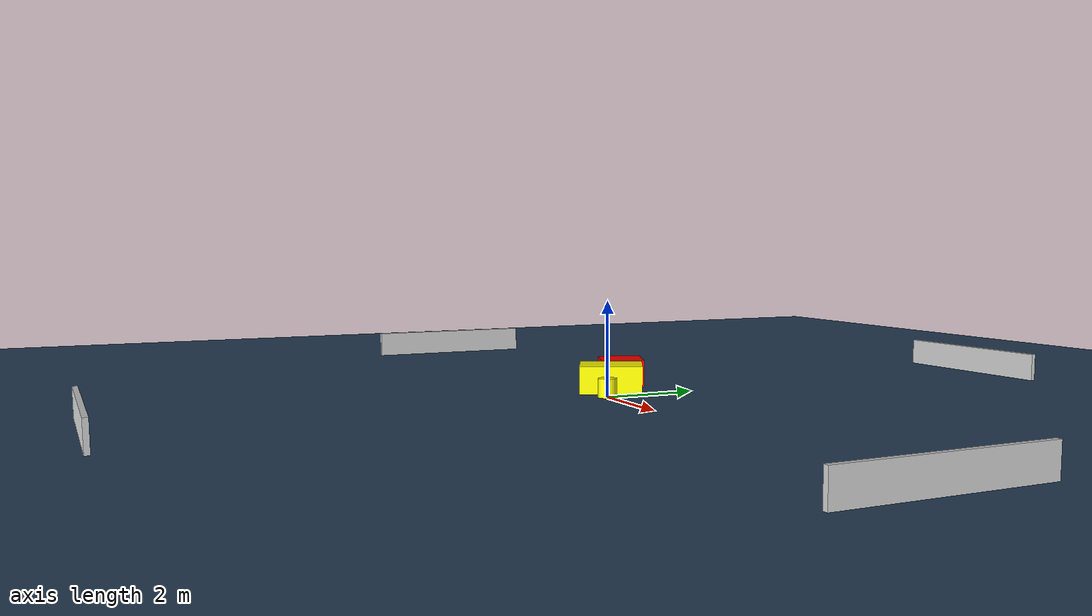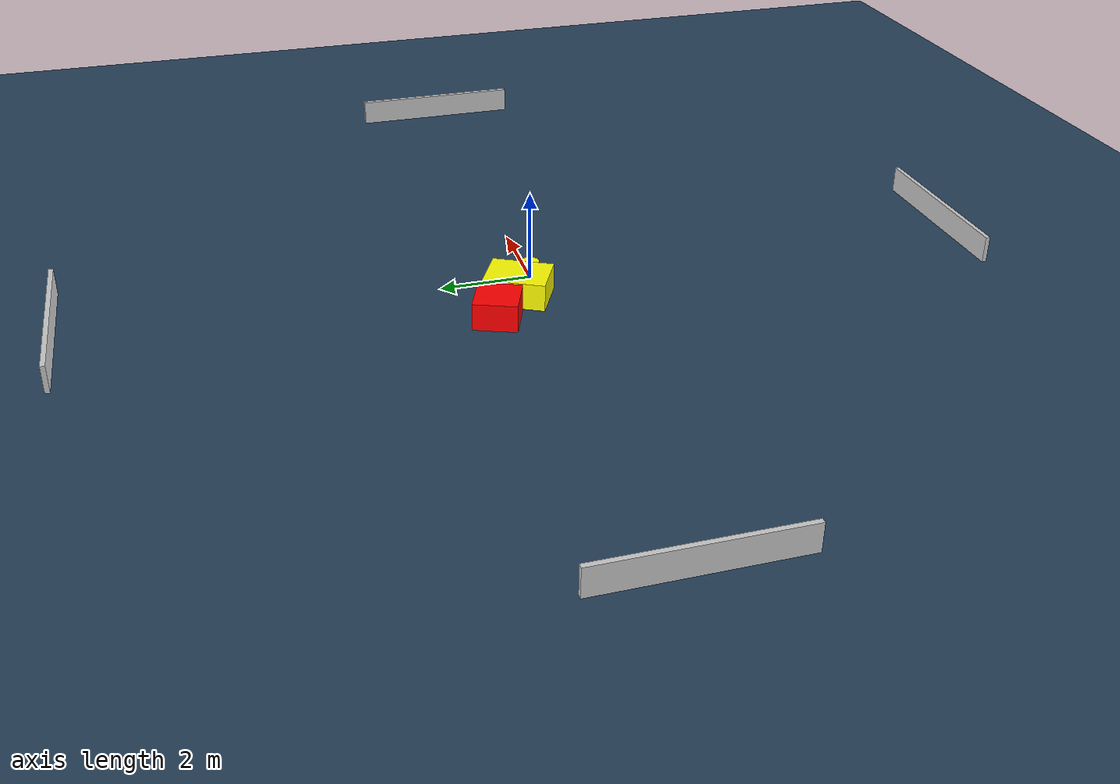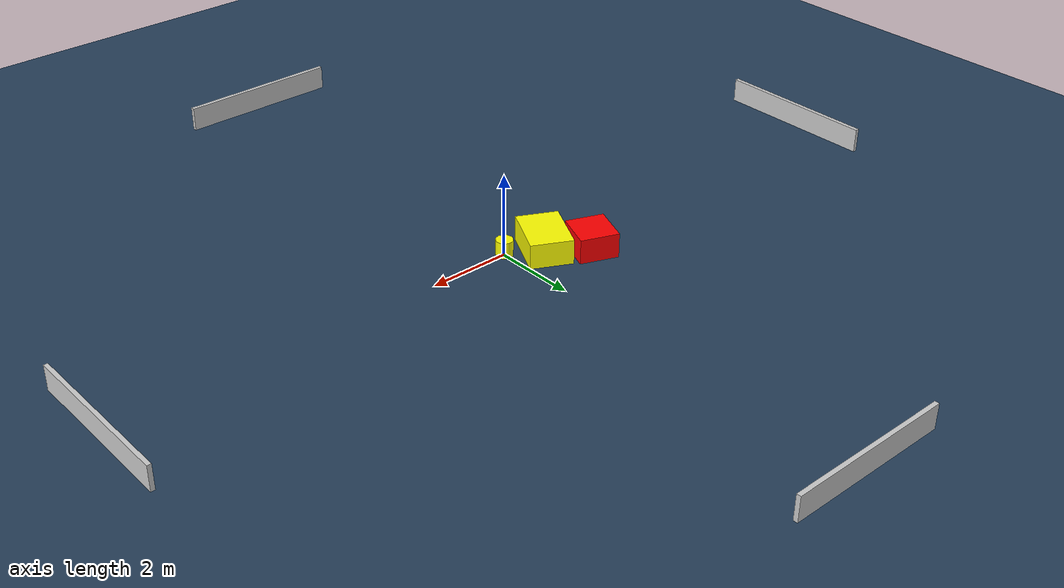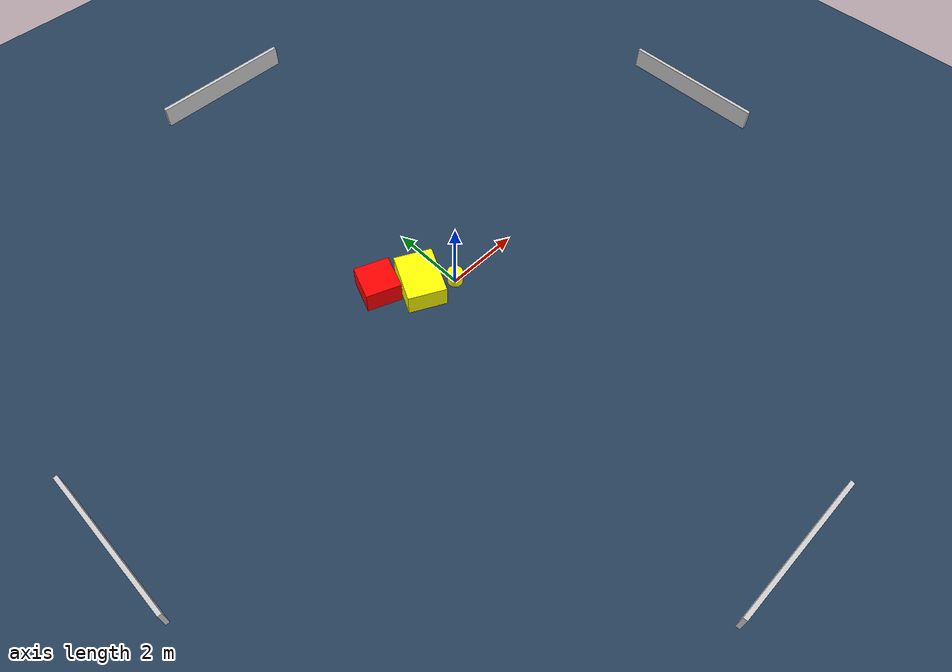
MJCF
<?xml version="1.0" ?>
<mujoco model="generated_environment">
  <option timestep="0.01" integrator="RK4" cone="elliptic"/>
  <default>
    <geom density="1"/>
  </default>
  <asset>
    <texture builtin="gradient" height="3072" name="skybox" rgb1="0.3 0.5 0.7" rgb2="0 0 0" type="skybox" width="512"/>
    <texture builtin="checker" height="300" name="groundplane" rgb1="0.2 0.3 0.4" rgb2="0.1 0.2 0.3" type="2d" width="300"/>
    <material name="groundplane" reflectance="0.2" texrepeat="5 5" texture="groundplane"/>
  </asset>
  <worldbody>
    <light dir="0 0 -1" directional="true" pos="0 0 1.5"/>
    <geom condim="3" friction="0.5 0.005 0.001" material="groundplane" name="floor" pos="0 0 0" size="0 0 0.05" type="plane"/>
    <body name="walls">
      <geom name="wall_1" condim="4" pos="-10.0 0.0 0.3" rgba="0.800000011920929 0.800000011920929 0.800000011920929 1.0" size="0.05 2.0 0.3" type="box"/>
      <geom name="wall_2" condim="4" pos="10.0 0.0 0.3" rgba="0.800000011920929 0.800000011920929 0.800000011920929 1.0" size="0.05 2.0 0.3" type="box"/>
      <geom name="wall_3" condim="4" pos="0.0 -10.0 0.3" rgba="0.800000011920929 0.800000011920929 0.800000011920929 1.0" size="2.0 0.05 0.3" type="box"/>
      <geom name="wall_4" condim="4" pos="0.0 10.0 0.3" rgba="0.800000011920929 0.800000011920929 0.800000011920929 1.0" size="2.0 0.05 0.3" type="box"/>
    </body>
    <body name="robot">
      <joint name="joint_x" type="slide" pos="0 0 0" axis="1 0 0"/>
      <joint name="joint_y" type="slide" pos="0 0 0" axis="0 1 0"/>
      <geom name="robot" type="cylinder" pos="0.0 0.0 0.2" size="0.2 0.2 0.0" mass="5.0" friction="1.0 0.005 0.0001" condim="4" rgba="1.0 1.0 0.0 1.0"/>
    </body>
    <body name="obstacle_1_movable">
      <geom name="obstacle_1_movable" condim="4" pos="-0.7727550887860879 0.4704710429014648 0.3" euler="0 0 63.04742556725232" friction="0.0 0.005 0.001" rgba="1.0 1.0 0.0 1.0" size="0.6695082361643434 0.5043311607866379 0.3" type="box" mass="0.1"/>
      <joint type="free"/>
    </body>
    <body name="obstacle_2_static">
      <geom name="obstacle_2_static" condim="4" pos="-1.6072500545041295 1.1367581905493631 0.3" euler="0 0 68.71343704223412" friction="0.0 0.005 0.001" rgba="1.0 0.0 0.0 1.0" size="0.4718785856845073 0.46525041681374135 0.3" type="box"/>
    </body>
  </worldbody>
  <actuator>
    <motor name="actuator_x" joint="joint_x" gear="1" ctrlrange="-1 1"/>
    <motor name="actuator_y" joint="joint_y" gear="1" ctrlrange="-1 1"/>
  </actuator>
</mujoco>
